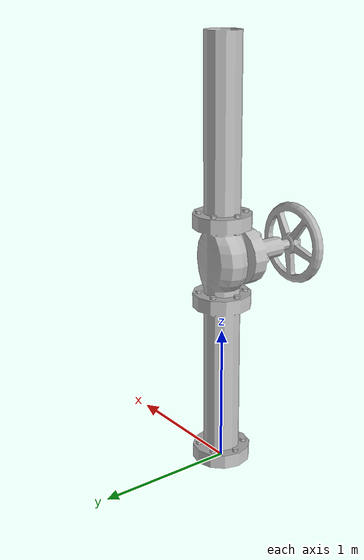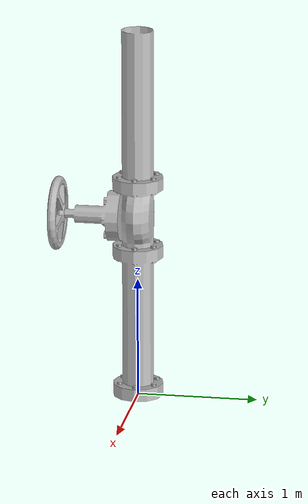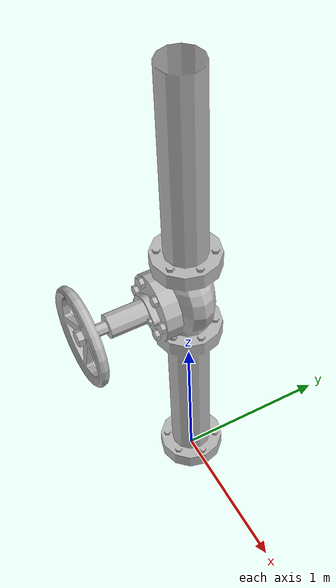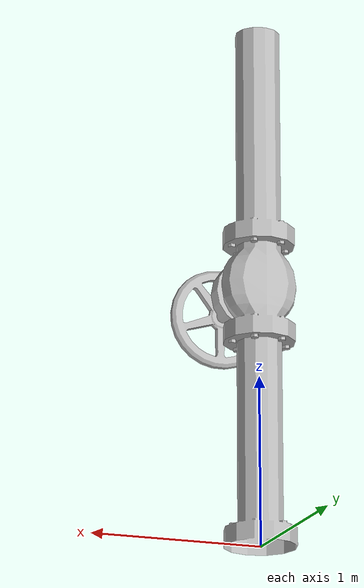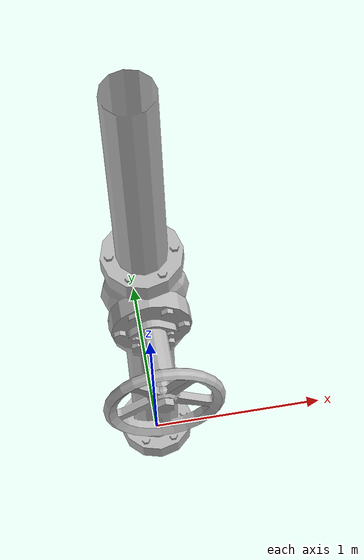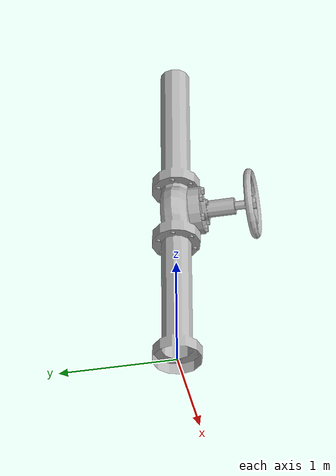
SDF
<?xml version='1.0' ?>
<sdf version='1.6'>
  <model name='Valve'>
    <static>true</static>
    <link name='link'>
      <collision name='collision'>
        <geometry>
          <mesh>
            <uri>model://Valve/meshes/Valve.dae</uri>
          </mesh>
        </geometry>
      </collision>
      <visual name='visual'>
        <geometry>
          <mesh>
            <uri>model://Valve/meshes/Valve.dae</uri>
          </mesh>
        </geometry>
      </visual>
    </link>
  </model>
</sdf>
